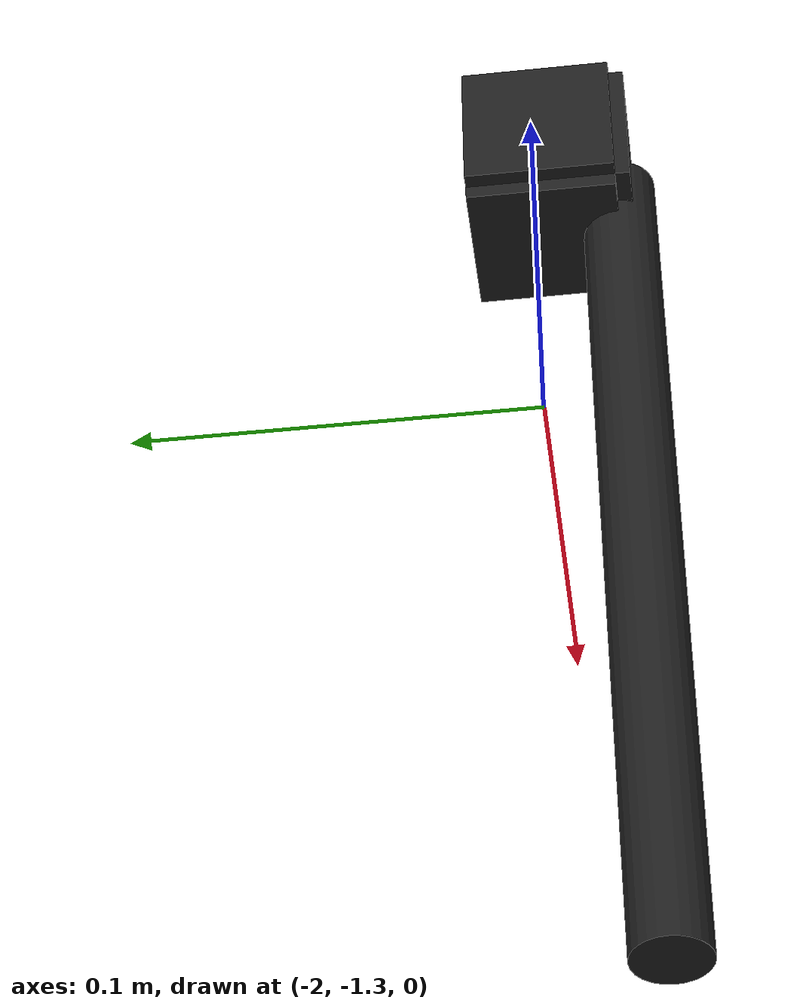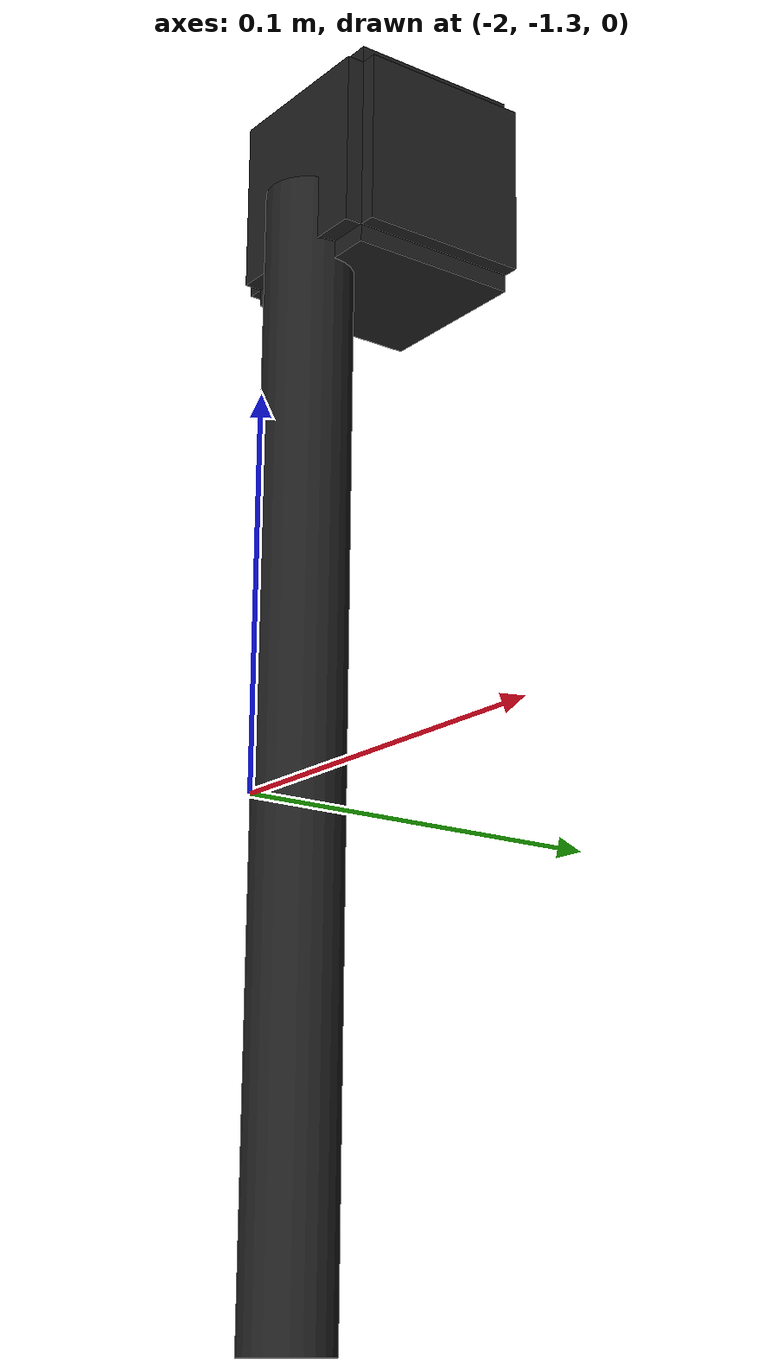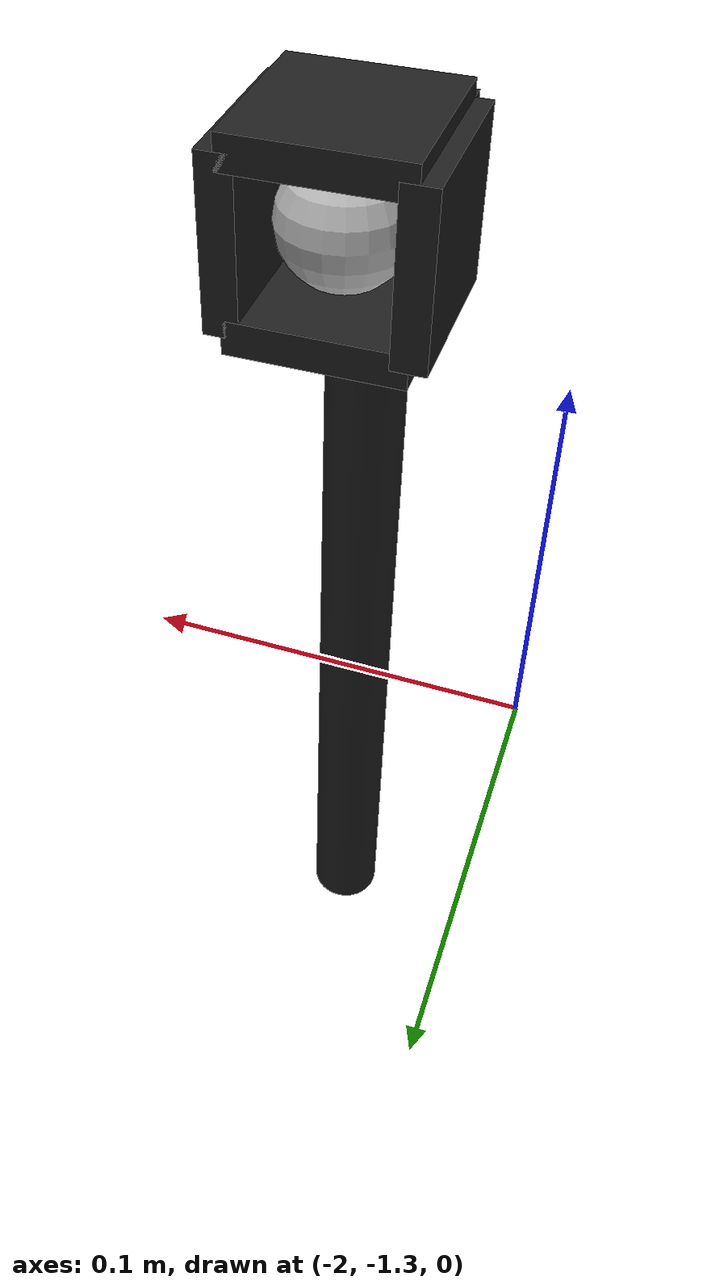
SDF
<?xml version='1.0'?>
<sdf version='1.6'>
  <model name='traffic_light'>
    <pose frame=''>0 0 0 0 -0 -1.5708</pose>

    <link name='traffic_light'>
       <collision name='collision'>
          <pose frame=''>1.3 -1.95 0.13 0 0 0</pose>
          <geometry>
            <sphere>
              <radius>0.015</radius>
            </sphere>
          </geometry>
        </collision>
        <visual name='visual'>
          <plugin name="traffic_light_plugin" filename="libtraffic_light_plugin.so">
            <redTime>15</redTime>
            <yellowTime>2</yellowTime>
            <greenTime>6</greenTime>
          </plugin>
          <pose frame=''>1.3 -1.95 0.13 0 0 0</pose>
          <geometry>
            <sphere>
              <radius>0.015</radius>
            </sphere>
          </geometry>
        </visual>
        <self_collide>0</self_collide>
        <kinematic>0</kinematic>
      </link>
      <static>1</static>

    <link name='traffic_light_wall1_1'>
      <visual name='visual'>
        <pose frame=''>1.3 -1.93 0.13 0 0 0</pose>
        <geometry>
          <box>
            <size>0.04 0.008 0.04</size>
          </box>
        </geometry>
        <material>
          <script>
            <name>Gazebo/Black</name>
            <uri>file://media/materials/scripts/gazebo.material</uri>
          </script>
        </material>
      </visual>
      <self_collide>0</self_collide>
      <kinematic>0</kinematic>
    </link>

    <link name='traffic_light_wall1_2'>
      <visual name='visual'>
        <pose frame=''>1.3 -1.95 0.15 1.57 0 0</pose>
        <geometry>
          <box>
            <size>0.04 0.008 0.04</size>
          </box>
        </geometry>
        <material>
          <script>
            <name>Gazebo/Black</name>
            <uri>file://media/materials/scripts/gazebo.material</uri>
          </script>
        </material>
      </visual>
      <self_collide>0</self_collide>
      <kinematic>0</kinematic>
    </link>

    <link name='traffic_light_wall1_3'>
      <visual name='visual'>
        <pose frame=''>1.3 -1.95 0.11 1.57 0 0</pose>
        <geometry>
          <box>
            <size>0.04 0.008 0.04</size>
          </box>
        </geometry>
        <material>
          <script>
            <name>Gazebo/Black</name>
            <uri>file://media/materials/scripts/gazebo.material</uri>
          </script>
        </material>
      </visual>
      <self_collide>0</self_collide>
      <kinematic>0</kinematic>
    </link>

    <link name='traffic_light_wall1_4'>
      <visual name='visual'>
        <pose frame=''>1.3 -1.97 0.13 0 0 0</pose>
        <geometry>
          <box>
            <size>0.04 0.008 0.04</size>
          </box>
        </geometry>
        <material>
          <script>
            <name>Gazebo/Black</name>
            <uri>file://media/materials/scripts/gazebo.material</uri>
          </script>
        </material>
      </visual>
      <self_collide>0</self_collide>
      <kinematic>0</kinematic>
    </link>

    <link name='traffic_light_wall1_5'>
      <visual name='visual'>
        <pose frame=''>1.32 -1.95 0.13 0 0 1.57</pose>
        <geometry>
          <box>
            <size>0.04 0.008 0.04</size>
          </box>
        </geometry>
        <material>
          <script>
            <name>Gazebo/Black</name>
            <uri>file://media/materials/scripts/gazebo.material</uri>
          </script>
        </material>
      </visual>
      <self_collide>0</self_collide>
      <kinematic>0</kinematic>
    </link>

    <link name='traffic_light_column'>
      <visual name='visual'>
        <pose frame=''>1.32 -1.95 0 0 0 1.57</pose>
        <geometry>
          <cylinder>
            <radius>0.01</radius>
            <length>0.25</length>
          </cylinder>
        </geometry>
        <material>
          <script>
            <name>Gazebo/Black</name>
            <uri>file://media/materials/scripts/gazebo.material</uri>
          </script>
        </material>
      </visual>
      <self_collide>0</self_collide>
      <kinematic>0</kinematic>
    </link>

    <!--Light for the traffic light to have context-independent illumination-->
    <link name='traffic_light_illumination_link'>
      <light name='traffic_light_illumination' type='spot'>
        <pose>1.168278 -1.95 0.125 3.141593 -1.541593 3.141593</pose>
        <frame name='traffic_light'></frame>
        <diffuse>1 1 1 1</diffuse>
        <specular>1 1 1 1</specular>
        <attenuation>
          <range>0.145</range>
          <constant>0</constant>
          <linear>0</linear>
          <quadratic>0</quadratic>
        </attenuation>
        <spot>
          <inner_angle>0</inner_angle>
          <outer_angle>1</outer_angle>
          <falloff>200</falloff>
        </spot>
      </light>
    </link>

    <!--This plugin allows us to create lights inside model files-->
    <plugin name='light_control' filename='libFlashLightPlugin.so'>
      <enable>true</enable>
      <light>
        <id>traffic_light_illumination_link/traffic_light_illumination</id>
        <duration>1</duration>
        <interval>0</interval>
      </light>
    </plugin>

  </model>
</sdf>
